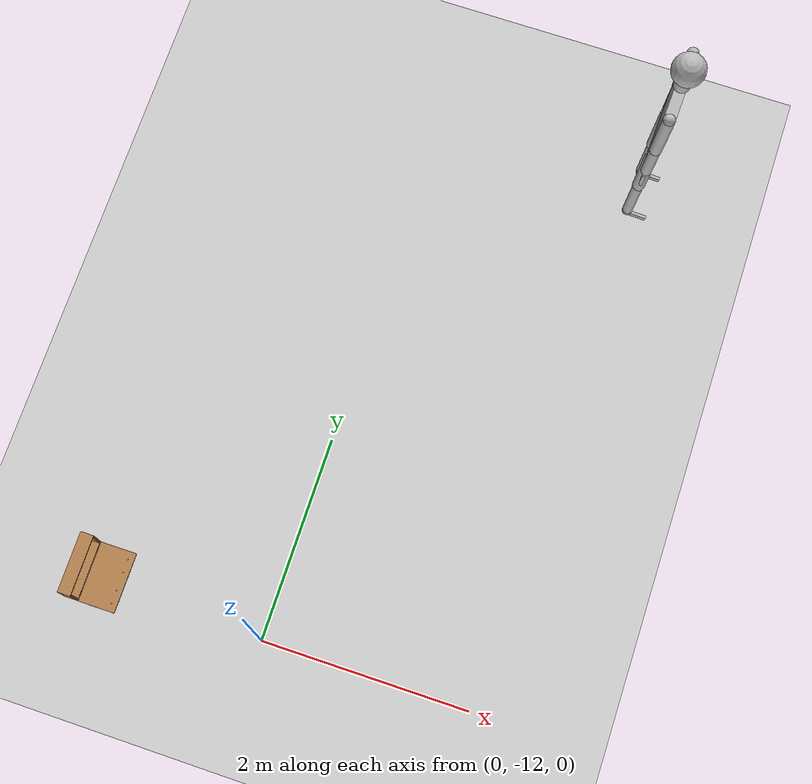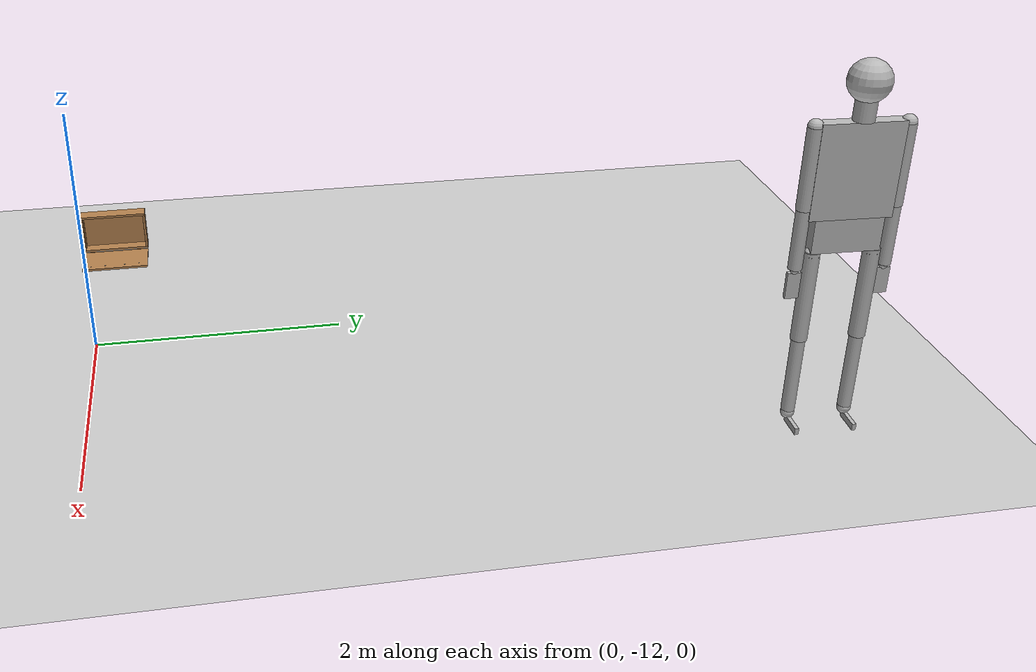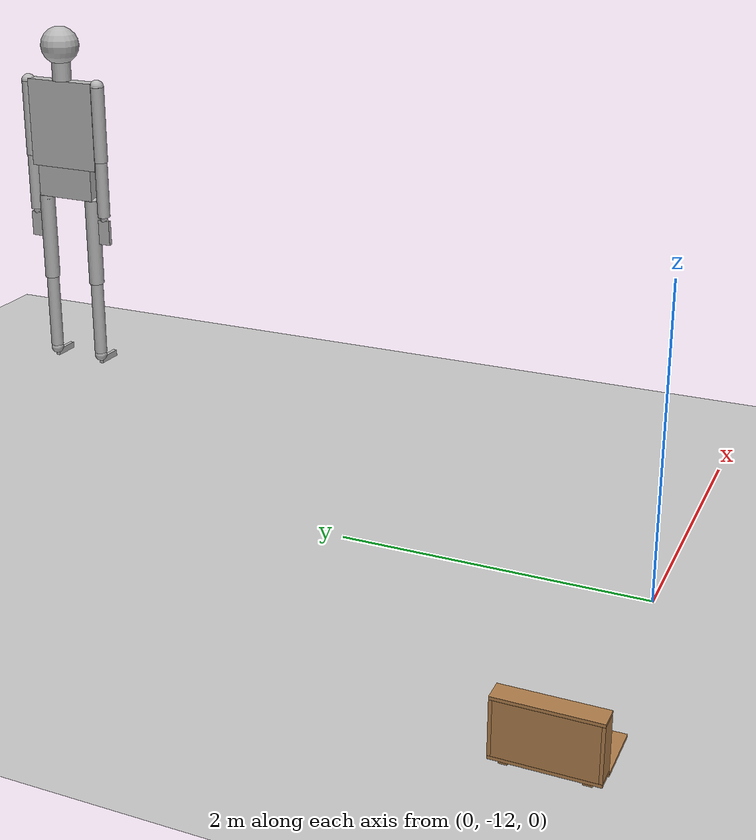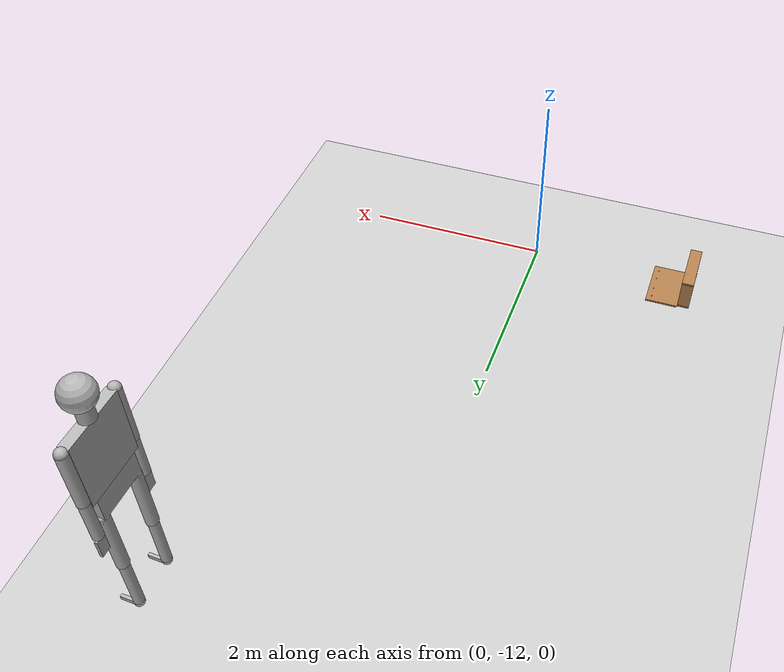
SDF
<sdf version="1.7">
 <world name="default">
  <model name="ground_plane">
   <static>1</static>
   <link name="link">
    <collision name="collision">
     <geometry><plane><normal>0 0 1</normal><size>100 100</size></plane></geometry>
     <surface>
      <contact><collide_bitmask>65535</collide_bitmask></contact>
      <friction><ode><mu>100</mu><mu2>50</mu2></ode></friction>
     </surface>
    </collision>
    <visual name="visual">
     <cast_shadows>0</cast_shadows>
     <geometry><plane><normal>0 0 1</normal><size>100 100</size></plane></geometry>
     <material>
      <script><uri>file://media/materials/scripts/gazebo.material</uri><name>Gazebo/Grey</name></script>
     </material>
    </visual>
   </link>
  </model>
  <model name="wooden_case_0">
   <link name="base">
    <pose>0 0 0.024 0 -0 0</pose>
    <inertial>
     <pose>-0.022184 0 0.171592 0 -0 0</pose>
     <mass>3.96264</mass>
     <inertia>
      <ixx>0.213536</ixx>
      <ixy>0</ixy>
      <ixz>0.000779377</ixz>
      <iyy>0.0708943</iyy>
      <iyz>0</iyz>
      <izz>0.154604</izz>
     </inertia>
    </inertial>
    <collision name="collision_back">
     <pose>-0.053975 0 0.1778 0 -0 0</pose>
     <geometry><box><size>0.01905 0.5461 0.3175</size></box></geometry>
     <surface>
      <contact>
       <poissons_ratio>0.347</poissons_ratio>
       <elastic_modulus>8.8e+09</elastic_modulus>
       <ode><kp>100000</kp><kd>100</kd><max_vel>100</max_vel><min_depth>0.001</min_depth></ode>
      </contact>
      <friction>
       <torsional>
        <coefficient>1</coefficient>
        <use_patch_radius>0</use_patch_radius>
        <surface_radius>0.01</surface_radius>
       </torsional>
      </friction>
     </surface>
    </collision>
    <visual name="visual_back">
     <pose>-0.053975 0 0.1778 0 -0 0</pose>
     <geometry><box><size>0.01905 0.5461 0.3175</size></box></geometry>
     <material>
      <script><uri>file://media/materials/scripts/gazebo.material</uri><name>Gazebo/Wood</name></script>
     </material>
    </visual>
    <collision name="collision_bottom">
     <pose>0 0 0.009525 0 -0 0</pose>
     <geometry><box><size>0.127 0.5842 0.01905</size></box></geometry>
     <surface>
      <contact>
       <poissons_ratio>0.347</poissons_ratio>
       <elastic_modulus>8.8e+09</elastic_modulus>
       <ode><kp>100000</kp><kd>100</kd><max_vel>100</max_vel><min_depth>0.001</min_depth></ode>
      </contact>
      <friction>
       <torsional>
        <coefficient>1</coefficient>
        <use_patch_radius>0</use_patch_radius>
        <surface_radius>0.01</surface_radius>
       </torsional>
      </friction>
     </surface>
    </collision>
    <visual name="visual_bottom">
     <pose>0 0 0.009525 0 -0 0</pose>
     <geometry><box><size>0.127 0.5842 0.01905</size></box></geometry>
     <material>
      <script><uri>file://media/materials/scripts/gazebo.material</uri><name>Gazebo/Wood</name></script>
     </material>
    </visual>
    <collision name="collision_top">
     <pose>0 0 0.346075 0 -0 0</pose>
     <geometry><box><size>0.127 0.5842 0.01905</size></box></geometry>
     <surface>
      <contact>
       <poissons_ratio>0.347</poissons_ratio>
       <elastic_modulus>8.8e+09</elastic_modulus>
       <ode><kp>100000</kp><kd>100</kd><max_vel>100</max_vel><min_depth>0.001</min_depth></ode>
      </contact>
      <friction>
       <torsional>
        <coefficient>1</coefficient>
        <use_patch_radius>0</use_patch_radius>
        <surface_radius>0.01</surface_radius>
       </torsional>
      </friction>
     </surface>
    </collision>
    <visual name="visual_top">
     <pose>0 0 0.346075 0 -0 0</pose>
     <geometry><box><size>0.127 0.5842 0.01905</size></box></geometry>
     <material>
      <script><uri>file://media/materials/scripts/gazebo.material</uri><name>Gazebo/Wood</name></script>
     </material>
    </visual>
    <collision name="collision_left">
     <pose>0 -0.282575 0.1778 0 -0 0</pose>
     <geometry><box><size>0.127 0.01905 0.3175</size></box></geometry>
     <surface>
      <contact>
       <poissons_ratio>0.347</poissons_ratio>
       <elastic_modulus>8.8e+09</elastic_modulus>
       <ode><kp>100000</kp><kd>100</kd><max_vel>100</max_vel><min_depth>0.001</min_depth></ode>
      </contact>
      <friction>
       <torsional>
        <coefficient>1</coefficient>
        <use_patch_radius>0</use_patch_radius>
        <surface_radius>0.01</surface_radius>
       </torsional>
      </friction>
     </surface>
    </collision>
    <visual name="visual_left">
     <pose>0 -0.282575 0.1778 0 -0 0</pose>
     <geometry><box><size>0.127 0.01905 0.3175</size></box></geometry>
     <material>
      <script><uri>file://media/materials/scripts/gazebo.material</uri><name>Gazebo/Wood</name></script>
     </material>
    </visual>
    <collision name="collision_right">
     <pose>0 0.282575 0.1778 0 -0 0</pose>
     <geometry><box><size>0.127 0.01905 0.3175</size></box></geometry>
     <surface>
      <contact>
       <poissons_ratio>0.347</poissons_ratio>
       <elastic_modulus>8.8e+09</elastic_modulus>
       <ode><kp>100000</kp><kd>100</kd><max_vel>100</max_vel><min_depth>0.001</min_depth></ode>
      </contact>
      <friction>
       <torsional>
        <coefficient>1</coefficient>
        <use_patch_radius>0</use_patch_radius>
        <surface_radius>0.01</surface_radius>
       </torsional>
      </friction>
     </surface>
    </collision>
    <visual name="visual_right">
     <pose>0 0.282575 0.1778 0 -0 0</pose>
     <geometry><box><size>0.127 0.01905 0.3175</size></box></geometry>
     <material>
      <script><uri>file://media/materials/scripts/gazebo.material</uri><name>Gazebo/Wood</name></script>
     </material>
    </visual>
    <collision name="collision_block_left">
     <pose>0.0095 -0.2151 -0.012 0 -0 0</pose>
     <geometry><box><size>0.108 0.05 0.024</size></box></geometry>
     <surface>
      <contact>
       <poissons_ratio>0.347</poissons_ratio>
       <elastic_modulus>8.8e+09</elastic_modulus>
       <ode><kp>100000</kp><kd>100</kd><max_vel>100</max_vel><min_depth>0.001</min_depth></ode>
      </contact>
      <friction>
       <torsional>
        <coefficient>1</coefficient>
        <use_patch_radius>0</use_patch_radius>
        <surface_radius>0.01</surface_radius>
       </torsional>
      </friction>
     </surface>
    </collision>
    <visual name="visual_block_left">
     <pose>0.0095 -0.2151 -0.012 0 -0 0</pose>
     <geometry><box><size>0.108 0.05 0.024</size></box></geometry>
     <material>
      <script><uri>file://media/materials/scripts/gazebo.material</uri><name>Gazebo/Wood</name></script>
     </material>
    </visual>
    <collision name="collision_block_right">
     <pose>0.0095 0.2151 -0.012 0 -0 0</pose>
     <geometry><box><size>0.108 0.05 0.024</size></box></geometry>
     <surface>
      <contact>
       <poissons_ratio>0.347</poissons_ratio>
       <elastic_modulus>8.8e+09</elastic_modulus>
       <ode><kp>100000</kp><kd>100</kd><max_vel>100</max_vel><min_depth>0.001</min_depth></ode>
      </contact>
      <friction>
       <torsional>
        <coefficient>1</coefficient>
        <use_patch_radius>0</use_patch_radius>
        <surface_radius>0.01</surface_radius>
       </torsional>
      </friction>
     </surface>
    </collision>
    <visual name="visual_block_right">
     <pose>0.0095 0.2151 -0.012 0 -0 0</pose>
     <geometry><box><size>0.108 0.05 0.024</size></box></geometry>
     <material>
      <script><uri>file://media/materials/scripts/gazebo.material</uri><name>Gazebo/Wood</name></script>
     </material>
    </visual>
   </link>
   <link name="lid">
    <pose>0.243775 0 0.009525 0 -0 0</pose>
    <inertial>
     <mass>1.97874</mass>
     <inertia>
      <ixx>0.0563367</ixx>
      <ixy>0</ixy>
      <ixz>0</ixz>
      <iyy>0.020911</iyy>
      <iyz>0</iyz>
      <izz>0.0771281</izz>
     </inertia>
    </inertial>
    <collision name="collision">
     <geometry><box><size>0.3556 0.5842 0.01905</size></box></geometry>
     <surface>
      <contact>
       <poissons_ratio>0.347</poissons_ratio>
       <elastic_modulus>8.8e+09</elastic_modulus>
       <ode><kp>100000</kp><kd>100</kd><max_vel>100</max_vel><min_depth>0.001</min_depth></ode>
      </contact>
      <friction>
       <torsional>
        <coefficient>1</coefficient>
        <use_patch_radius>0</use_patch_radius>
        <surface_radius>0.01</surface_radius>
       </torsional>
      </friction>
     </surface>
    </collision>
    <visual name="visual">
     <geometry><box><size>0.3556 0.5842 0.01905</size></box></geometry>
     <material>
      <script><uri>file://media/materials/scripts/gazebo.material</uri><name>Gazebo/Wood</name></script>
     </material>
    </visual>
    <visual name="tee_nut_1">
     <pose>0.122 -0.216 0 0 -0 0</pose>
     <geometry><cylinder><radius>0.00635</radius><length>0.0192405</length></cylinder></geometry>
     <material>
      <script><uri>file://media/materials/scripts/gazebo.material</uri><name>Gazebo/Grey</name></script>
     </material>
    </visual>
    <visual name="tee_nut_2">
     <pose>0.122 -0.088 0 0 -0 0</pose>
     <geometry><cylinder><radius>0.00635</radius><length>0.0192405</length></cylinder></geometry>
     <material>
      <script><uri>file://media/materials/scripts/gazebo.material</uri><name>Gazebo/Grey</name></script>
     </material>
    </visual>
    <visual name="tee_nut_3">
     <pose>0.122 0.088 0 0 -0 0</pose>
     <geometry><cylinder><radius>0.00635</radius><length>0.0192405</length></cylinder></geometry>
     <material>
      <script><uri>file://media/materials/scripts/gazebo.material</uri><name>Gazebo/Grey</name></script>
     </material>
    </visual>
    <visual name="tee_nut_4">
     <pose>0.122 0.216 0 0 -0 0</pose>
     <geometry><cylinder><radius>0.00635</radius><length>0.0192405</length></cylinder></geometry>
     <material>
      <script><uri>file://media/materials/scripts/gazebo.material</uri><name>Gazebo/Grey</name></script>
     </material>
    </visual>
   </link>
   <joint name="lid_hinge" type="revolute">
    <pose>-0.1778 0 0.01905 0 -0 0</pose>
    <parent>base</parent>
    <child>lid</child>
    <axis>
     <xyz>0 1 0</xyz>
     <limit><upper>0.523599</upper><lower>-1.5708</lower></limit>
     <dynamics><spring_reference>0</spring_reference><spring_stiffness>0</spring_stiffness></dynamics>
    </axis>
   </joint>
   <pose>-1.79945 -11.9059 -0.001057 0 -0.000428 0</pose>
  </model>
  <model name="ragdoll_0">
   <pose>2.02419 -6.65739 1.39996 1e-05 0.000293 -0.035808</pose>
   <link name="hip">
    <inertial>
     <inertia><ixx>0.1</ixx><ixy>0</ixy><ixz>0</ixz><iyy>0.1</iyy><iyz>0</iyz><izz>0.1</izz></inertia>
     <mass>10</mass>
    </inertial>
    <collision name="hip_geom">
     <pose>0 0 0.125 0 -0 0</pose>
     <geometry><box><size>0.1 0.5 0.25</size></box></geometry>
     <surface>
      <friction><ode><mu>-1</mu><mu2>-1</mu2><fdir1>0 0 0</fdir1><slip1>0</slip1><slip2>0</slip2></ode></friction>
      <bounce><restitution_coefficient>0</restitution_coefficient><threshold>100000</threshold></bounce>
      <contact>
       <ode>
        <soft_cfm>0</soft_cfm>
        <soft_erp>0.2</soft_erp>
        <kp>1e+12</kp>
        <kd>1</kd>
        <max_vel>0</max_vel>
        <min_depth>0.001</min_depth>
       </ode>
      </contact>
     </surface>
    </collision>
    <visual name="hip_geom_visual">
     <pose>0 0 0.125 0 -0 0</pose>
     <geometry><box><size>0.1 0.5 0.25</size></box></geometry>
    </visual>
    <gravity>0</gravity>
   </link>
   <link name="l_thigh_pan">
    <pose>0 0.22 0 0 -0 0</pose>
    <inertial>
     <inertia><ixx>0.01</ixx><ixy>0</ixy><ixz>0</ixz><iyy>0.01</iyy><iyz>0</iyz><izz>0.01</izz></inertia>
     <mass>1</mass>
    </inertial>
    <collision name="l_thigh_pan_geom">
     <pose>0 0 -0.03 0 -0 0</pose>
     <geometry><sphere><radius>0.06</radius></sphere></geometry>
     <surface>
      <friction><ode><mu>-1</mu><mu2>-1</mu2><fdir1>0 0 0</fdir1><slip1>0</slip1><slip2>0</slip2></ode></friction>
      <bounce><restitution_coefficient>0</restitution_coefficient><threshold>100000</threshold></bounce>
      <contact>
       <ode>
        <soft_cfm>0</soft_cfm>
        <soft_erp>0.2</soft_erp>
        <kp>1e+12</kp>
        <kd>1</kd>
        <max_vel>0</max_vel>
        <min_depth>0.001</min_depth>
       </ode>
      </contact>
     </surface>
    </collision>
    <visual name="l_thigh_pan_geom_visual">
     <pose>0 0 -0.03 0 -0 0</pose>
     <geometry><sphere><radius>0.06</radius></sphere></geometry>
    </visual>
    <gravity>0</gravity>
   </link>
   <link name="l_thigh_lift">
    <pose>0 0.22 0 0 -0 0</pose>
    <inertial>
     <inertia><ixx>0.05</ixx><ixy>0</ixy><ixz>0</ixz><iyy>0.05</iyy><iyz>0</iyz><izz>0.05</izz></inertia>
     <mass>5</mass>
    </inertial>
    <collision name="l_thigh_lift_geom">
     <pose>0 0 -0.35 0 -0 0</pose>
     <geometry><cylinder><radius>0.06</radius><length>0.7</length></cylinder></geometry>
     <surface>
      <friction><ode><mu>-1</mu><mu2>-1</mu2><fdir1>0 0 0</fdir1><slip1>0</slip1><slip2>0</slip2></ode></friction>
      <bounce><restitution_coefficient>0</restitution_coefficient><threshold>100000</threshold></bounce>
      <contact>
       <ode>
        <soft_cfm>0</soft_cfm>
        <soft_erp>0.2</soft_erp>
        <kp>1e+12</kp>
        <kd>1</kd>
        <max_vel>0</max_vel>
        <min_depth>0.001</min_depth>
       </ode>
      </contact>
     </surface>
    </collision>
    <visual name="l_thigh_lift_geom_visual">
     <pose>0 0 -0.35 0 -0 0</pose>
     <geometry><cylinder><radius>0.06</radius><length>0.7</length></cylinder></geometry>
    </visual>
    <gravity>0</gravity>
   </link>
   <link name="l_calf">
    <pose>0 0.22 -0.7 0 -0 0</pose>
    <inertial>
     <inertia><ixx>0.02</ixx><ixy>0</ixy><ixz>0</ixz><iyy>0.02</iyy><iyz>0</iyz><izz>0.02</izz></inertia>
     <mass>2</mass>
    </inertial>
    <collision name="l_calf_geom">
     <pose>0 0 -0.3 0 -0 0</pose>
     <geometry><cylinder><radius>0.05</radius><length>0.6</length></cylinder></geometry>
     <surface>
      <friction><ode><mu>-1</mu><mu2>-1</mu2><fdir1>0 0 0</fdir1><slip1>0</slip1><slip2>0</slip2></ode></friction>
      <bounce><restitution_coefficient>0</restitution_coefficient><threshold>100000</threshold></bounce>
      <contact>
       <ode>
        <soft_cfm>0</soft_cfm>
        <soft_erp>0.2</soft_erp>
        <kp>1e+12</kp>
        <kd>1</kd>
        <max_vel>0</max_vel>
        <min_depth>0.001</min_depth>
       </ode>
      </contact>
     </surface>
    </collision>
    <visual name="l_calf_geom_visual">
     <pose>0 0 -0.3 0 -0 0</pose>
     <geometry><cylinder><radius>0.05</radius><length>0.6</length></cylinder></geometry>
    </visual>
    <gravity>0</gravity>
   </link>
   <link name="l_ankle">
    <pose>0 0.22 -1.325 0 -0 0</pose>
    <inertial>
     <inertia><ixx>0.01</ixx><ixy>0</ixy><ixz>0</ixz><iyy>0.01</iyy><iyz>0</iyz><izz>0.01</izz></inertia>
     <mass>1</mass>
    </inertial>
    <collision name="l_ankle_geom">
     <geometry><sphere><radius>0.05</radius></sphere></geometry>
     <surface>
      <friction><ode><mu>-1</mu><mu2>-1</mu2><fdir1>0 0 0</fdir1><slip1>0</slip1><slip2>0</slip2></ode></friction>
      <bounce><restitution_coefficient>0</restitution_coefficient><threshold>100000</threshold></bounce>
      <contact>
       <ode>
        <soft_cfm>0</soft_cfm>
        <soft_erp>0.2</soft_erp>
        <kp>1e+12</kp>
        <kd>1</kd>
        <max_vel>0</max_vel>
        <min_depth>0.001</min_depth>
       </ode>
      </contact>
     </surface>
    </collision>
    <visual name="l_ankle_geom_visual"><geometry><sphere><radius>0.05</radius></sphere></geometry></visual>
    <gravity>0</gravity>
   </link>
   <link name="l_foot">
    <pose>0 0.22 -1.35 0 -0 0</pose>
    <inertial>
     <pose>0.1 0 0 0 -0 0</pose>
     <inertia><ixx>0.01</ixx><ixy>0</ixy><ixz>0</ixz><iyy>0.01</iyy><iyz>0</iyz><izz>0.01</izz></inertia>
     <mass>1</mass>
    </inertial>
    <collision name="l_foot_geom">
     <pose>0.1 0 -0.025 0 -0 0</pose>
     <geometry><box><size>0.2 0.03 0.05</size></box></geometry>
     <surface>
      <friction><ode><mu>-1</mu><mu2>-1</mu2><fdir1>0 0 0</fdir1><slip1>0</slip1><slip2>0</slip2></ode></friction>
      <bounce><restitution_coefficient>0</restitution_coefficient><threshold>100000</threshold></bounce>
      <contact>
       <ode>
        <soft_cfm>0</soft_cfm>
        <soft_erp>0.2</soft_erp>
        <kp>1e+12</kp>
        <kd>1</kd>
        <max_vel>0</max_vel>
        <min_depth>0.001</min_depth>
       </ode>
      </contact>
     </surface>
    </collision>
    <visual name="l_foot_geom_visual">
     <pose>0.1 0 -0.025 0 -0 0</pose>
     <geometry><box><size>0.2 0.03 0.05</size></box></geometry>
    </visual>
   </link>
   <link name="r_thigh_pan">
    <pose>0 -0.22 0 0 -0 0</pose>
    <inertial>
     <inertia><ixx>0.01</ixx><ixy>0</ixy><ixz>0</ixz><iyy>0.01</iyy><iyz>0</iyz><izz>0.01</izz></inertia>
     <mass>1</mass>
    </inertial>
    <collision name="r_thigh_pan_geom">
     <pose>0 0 -0.03 0 -0 0</pose>
     <geometry><sphere><radius>0.06</radius></sphere></geometry>
     <surface>
      <friction><ode><mu>-1</mu><mu2>-1</mu2><fdir1>0 0 0</fdir1><slip1>0</slip1><slip2>0</slip2></ode></friction>
      <bounce><restitution_coefficient>0</restitution_coefficient><threshold>100000</threshold></bounce>
      <contact>
       <ode>
        <soft_cfm>0</soft_cfm>
        <soft_erp>0.2</soft_erp>
        <kp>1e+12</kp>
        <kd>1</kd>
        <max_vel>0</max_vel>
        <min_depth>0.001</min_depth>
       </ode>
      </contact>
     </surface>
    </collision>
    <visual name="r_thigh_pan_geom_visual">
     <pose>0 0 -0.03 0 -0 0</pose>
     <geometry><sphere><radius>0.06</radius></sphere></geometry>
    </visual>
    <gravity>0</gravity>
   </link>
   <link name="r_thigh_lift">
    <pose>0 -0.22 0 0 -0 0</pose>
    <inertial>
     <inertia><ixx>0.05</ixx><ixy>0</ixy><ixz>0</ixz><iyy>0.05</iyy><iyz>0</iyz><izz>0.05</izz></inertia>
     <mass>5</mass>
    </inertial>
    <collision name="r_thigh_lift_geom">
     <pose>0 0 -0.35 0 -0 0</pose>
     <geometry><cylinder><radius>0.06</radius><length>0.7</length></cylinder></geometry>
     <surface>
      <friction><ode><mu>-1</mu><mu2>-1</mu2><fdir1>0 0 0</fdir1><slip1>0</slip1><slip2>0</slip2></ode></friction>
      <bounce><restitution_coefficient>0</restitution_coefficient><threshold>100000</threshold></bounce>
      <contact>
       <ode>
        <soft_cfm>0</soft_cfm>
        <soft_erp>0.2</soft_erp>
        <kp>1e+12</kp>
        <kd>1</kd>
        <max_vel>0</max_vel>
        <min_depth>0.001</min_depth>
       </ode>
      </contact>
     </surface>
    </collision>
    <visual name="r_thigh_lift_geom_visual">
     <pose>0 0 -0.35 0 -0 0</pose>
     <geometry><cylinder><radius>0.06</radius><length>0.7</length></cylinder></geometry>
    </visual>
    <gravity>0</gravity>
   </link>
   <link name="r_calf">
    <pose>0 -0.22 -0.7 0 -0 0</pose>
    <inertial>
     <inertia><ixx>0.02</ixx><ixy>0</ixy><ixz>0</ixz><iyy>0.02</iyy><iyz>0</iyz><izz>0.02</izz></inertia>
     <mass>2</mass>
    </inertial>
    <collision name="r_calf_geom">
     <pose>0 0 -0.3 0 -0 0</pose>
     <geometry><cylinder><radius>0.05</radius><length>0.6</length></cylinder></geometry>
     <surface>
      <friction><ode><mu>-1</mu><mu2>-1</mu2><fdir1>0 0 0</fdir1><slip1>0</slip1><slip2>0</slip2></ode></friction>
      <bounce><restitution_coefficient>0</restitution_coefficient><threshold>100000</threshold></bounce>
      <contact>
       <ode>
        <soft_cfm>0</soft_cfm>
        <soft_erp>0.2</soft_erp>
        <kp>1e+12</kp>
        <kd>1</kd>
        <max_vel>0</max_vel>
        <min_depth>0.001</min_depth>
       </ode>
      </contact>
     </surface>
    </collision>
    <visual name="r_calf_geom_visual">
     <pose>0 0 -0.3 0 -0 0</pose>
     <geometry><cylinder><radius>0.05</radius><length>0.6</length></cylinder></geometry>
    </visual>
    <gravity>0</gravity>
   </link>
   <link name="r_ankle">
    <pose>0 -0.22 -1.325 0 -0 0</pose>
    <inertial>
     <inertia><ixx>0.01</ixx><ixy>0</ixy><ixz>0</ixz><iyy>0.01</iyy><iyz>0</iyz><izz>0.01</izz></inertia>
     <mass>1</mass>
    </inertial>
    <collision name="r_ankle_geom">
     <geometry><sphere><radius>0.05</radius></sphere></geometry>
     <surface>
      <friction><ode><mu>-1</mu><mu2>-1</mu2><fdir1>0 0 0</fdir1><slip1>0</slip1><slip2>0</slip2></ode></friction>
      <bounce><restitution_coefficient>0</restitution_coefficient><threshold>100000</threshold></bounce>
      <contact>
       <ode>
        <soft_cfm>0</soft_cfm>
        <soft_erp>0.2</soft_erp>
        <kp>1e+12</kp>
        <kd>1</kd>
        <max_vel>0</max_vel>
        <min_depth>0.001</min_depth>
       </ode>
      </contact>
     </surface>
    </collision>
    <visual name="r_ankle_geom_visual"><geometry><sphere><radius>0.05</radius></sphere></geometry></visual>
    <gravity>0</gravity>
   </link>
   <link name="r_foot">
    <pose>0 -0.22 -1.35 0 -0 0</pose>
    <inertial>
     <pose>0.1 0 0 0 -0 0</pose>
     <inertia><ixx>0.01</ixx><ixy>0</ixy><ixz>0</ixz><iyy>0.01</iyy><iyz>0</iyz><izz>0.01</izz></inertia>
     <mass>1</mass>
    </inertial>
    <collision name="r_foot_geom">
     <pose>0.1 0 -0.025 0 -0 0</pose>
     <geometry><box><size>0.2 0.03 0.05</size></box></geometry>
     <surface>
      <friction><ode><mu>-1</mu><mu2>-1</mu2><fdir1>0 0 0</fdir1><slip1>0</slip1><slip2>0</slip2></ode></friction>
      <bounce><restitution_coefficient>0</restitution_coefficient><threshold>100000</threshold></bounce>
      <contact>
       <ode>
        <soft_cfm>0</soft_cfm>
        <soft_erp>0.2</soft_erp>
        <kp>1e+12</kp>
        <kd>1</kd>
        <max_vel>0</max_vel>
        <min_depth>0.001</min_depth>
       </ode>
      </contact>
     </surface>
    </collision>
    <visual name="r_foot_geom_visual">
     <pose>0.1 0 -0.025 0 -0 0</pose>
     <geometry><box><size>0.2 0.03 0.05</size></box></geometry>
    </visual>
   </link>
   <link name="torso">
    <pose>0 0 0.25 0 -0 0</pose>
    <inertial>
     <inertia><ixx>0.3</ixx><ixy>0</ixy><ixz>0</ixz><iyy>0.3</iyy><iyz>0</iyz><izz>0.3</izz></inertia>
     <mass>30</mass>
    </inertial>
    <collision name="torso_geom">
     <pose>0 0 0.35 0 -0 0</pose>
     <geometry><box><size>0.1 0.6 0.7</size></box></geometry>
     <surface>
      <friction><ode><mu>-1</mu><mu2>-1</mu2><fdir1>0 0 0</fdir1><slip1>0</slip1><slip2>0</slip2></ode></friction>
      <bounce><restitution_coefficient>0</restitution_coefficient><threshold>100000</threshold></bounce>
      <contact>
       <ode>
        <soft_cfm>0</soft_cfm>
        <soft_erp>0.2</soft_erp>
        <kp>1e+12</kp>
        <kd>1</kd>
        <max_vel>0</max_vel>
        <min_depth>0.001</min_depth>
       </ode>
      </contact>
     </surface>
    </collision>
    <visual name="torso_geom_visual">
     <pose>0 0 0.35 0 -0 0</pose>
     <geometry><box><size>0.1 0.6 0.7</size></box></geometry>
    </visual>
    <gravity>0</gravity>
   </link>
   <link name="l_shoulder">
    <pose>0 0.3275 0.9225 0 -0 0</pose>
    <inertial>
     <inertia><ixx>0.01</ixx><ixy>0</ixy><ixz>0</ixz><iyy>0.01</iyy><iyz>0</iyz><izz>0.01</izz></inertia>
     <mass>1</mass>
    </inertial>
    <collision name="l_shoulder_geom">
     <geometry><sphere><radius>0.055</radius></sphere></geometry>
     <surface>
      <friction><ode><mu>-1</mu><mu2>-1</mu2><fdir1>0 0 0</fdir1><slip1>0</slip1><slip2>0</slip2></ode></friction>
      <bounce><restitution_coefficient>0</restitution_coefficient><threshold>100000</threshold></bounce>
      <contact>
       <ode>
        <soft_cfm>0</soft_cfm>
        <soft_erp>0.2</soft_erp>
        <kp>1e+12</kp>
        <kd>1</kd>
        <max_vel>0</max_vel>
        <min_depth>0.001</min_depth>
       </ode>
      </contact>
     </surface>
    </collision>
    <visual name="l_shoulder_geom_visual"><geometry><sphere><radius>0.055</radius></sphere></geometry></visual>
    <gravity>0</gravity>
   </link>
   <link name="l_upper_arm">
    <pose>0 0.3275 0.9225 0 -0 0</pose>
    <inertial>
     <inertia><ixx>0.02</ixx><ixy>0</ixy><ixz>0</ixz><iyy>0.02</iyy><iyz>0</iyz><izz>0.02</izz></inertia>
     <mass>2</mass>
    </inertial>
    <collision name="l_upper_arm_geom">
     <pose>0 0 -0.3 0 -0 0</pose>
     <geometry><cylinder><radius>0.055</radius><length>0.6</length></cylinder></geometry>
     <surface>
      <friction><ode><mu>-1</mu><mu2>-1</mu2><fdir1>0 0 0</fdir1><slip1>0</slip1><slip2>0</slip2></ode></friction>
      <bounce><restitution_coefficient>0</restitution_coefficient><threshold>100000</threshold></bounce>
      <contact>
       <ode>
        <soft_cfm>0</soft_cfm>
        <soft_erp>0.2</soft_erp>
        <kp>1e+12</kp>
        <kd>1</kd>
        <max_vel>0</max_vel>
        <min_depth>0.001</min_depth>
       </ode>
      </contact>
     </surface>
    </collision>
    <visual name="l_upper_arm_geom_visual">
     <pose>0 0 -0.3 0 -0 0</pose>
     <geometry><cylinder><radius>0.055</radius><length>0.6</length></cylinder></geometry>
    </visual>
    <gravity>0</gravity>
   </link>
   <link name="l_forearm">
    <pose>0 0.3275 0.3225 0 -0 0</pose>
    <inertial>
     <inertia><ixx>0.01</ixx><ixy>0</ixy><ixz>0</ixz><iyy>0.01</iyy><iyz>0</iyz><izz>0.01</izz></inertia>
     <mass>1</mass>
    </inertial>
    <collision name="l_forearm_geom">
     <pose>0 0 -0.225 0 -0 0</pose>
     <geometry><cylinder><radius>0.05</radius><length>0.45</length></cylinder></geometry>
     <surface>
      <friction><ode><mu>-1</mu><mu2>-1</mu2><fdir1>0 0 0</fdir1><slip1>0</slip1><slip2>0</slip2></ode></friction>
      <bounce><restitution_coefficient>0</restitution_coefficient><threshold>100000</threshold></bounce>
      <contact>
       <ode>
        <soft_cfm>0</soft_cfm>
        <soft_erp>0.2</soft_erp>
        <kp>1e+12</kp>
        <kd>1</kd>
        <max_vel>0</max_vel>
        <min_depth>0.001</min_depth>
       </ode>
      </contact>
     </surface>
    </collision>
    <visual name="l_forearm_geom_visual">
     <pose>0 0 -0.225 0 -0 0</pose>
     <geometry><cylinder><radius>0.05</radius><length>0.45</length></cylinder></geometry>
    </visual>
    <gravity>0</gravity>
   </link>
   <link name="l_wrist">
    <pose>0 0.3275 -0.1425 0 -0 0</pose>
    <inertial>
     <inertia><ixx>0.01</ixx><ixy>0</ixy><ixz>0</ixz><iyy>0.01</iyy><iyz>0</iyz><izz>0.01</izz></inertia>
     <mass>1</mass>
    </inertial>
    <collision name="l_wrist_geom">
     <geometry><sphere><radius>0.03</radius></sphere></geometry>
     <surface>
      <friction><ode><mu>-1</mu><mu2>-1</mu2><fdir1>0 0 0</fdir1><slip1>0</slip1><slip2>0</slip2></ode></friction>
      <bounce><restitution_coefficient>0</restitution_coefficient><threshold>100000</threshold></bounce>
      <contact>
       <ode>
        <soft_cfm>0</soft_cfm>
        <soft_erp>0.2</soft_erp>
        <kp>1e+12</kp>
        <kd>1</kd>
        <max_vel>0</max_vel>
        <min_depth>0.001</min_depth>
       </ode>
      </contact>
     </surface>
    </collision>
    <visual name="l_wrist_geom_visual"><geometry><sphere><radius>0.03</radius></sphere></geometry></visual>
    <gravity>0</gravity>
   </link>
   <link name="l_hand">
    <pose>0 0.3275 -0.1575 0 -0 0</pose>
    <inertial>
     <inertia><ixx>0.01</ixx><ixy>0</ixy><ixz>0</ixz><iyy>0.01</iyy><iyz>0</iyz><izz>0.01</izz></inertia>
     <mass>1</mass>
    </inertial>
    <collision name="l_hand_geom">
     <pose>0 0 -0.1 0 -0 0</pose>
     <geometry><box><size>0.03 0.1 0.2</size></box></geometry>
     <surface>
      <friction><ode><mu>-1</mu><mu2>-1</mu2><fdir1>0 0 0</fdir1><slip1>0</slip1><slip2>0</slip2></ode></friction>
      <bounce><restitution_coefficient>0</restitution_coefficient><threshold>100000</threshold></bounce>
      <contact>
       <ode>
        <soft_cfm>0</soft_cfm>
        <soft_erp>0.2</soft_erp>
        <kp>1e+12</kp>
        <kd>1</kd>
        <max_vel>0</max_vel>
        <min_depth>0.001</min_depth>
       </ode>
      </contact>
     </surface>
    </collision>
    <visual name="l_hand_geom_visual">
     <pose>0 0 -0.1 0 -0 0</pose>
     <geometry><box><size>0.03 0.1 0.2</size></box></geometry>
    </visual>
    <gravity>0</gravity>
   </link>
   <link name="neck">
    <pose>0 0 0.95 0 -0 0</pose>
    <inertial>
     <inertia><ixx>0.01</ixx><ixy>0</ixy><ixz>0</ixz><iyy>0.01</iyy><iyz>0</iyz><izz>0.01</izz></inertia>
     <mass>1</mass>
    </inertial>
    <collision name="neck_geom">
     <pose>0 0 0.1 0 -0 0</pose>
     <geometry><cylinder><radius>0.075</radius><length>0.2</length></cylinder></geometry>
     <surface>
      <friction><ode><mu>-1</mu><mu2>-1</mu2><fdir1>0 0 0</fdir1><slip1>0</slip1><slip2>0</slip2></ode></friction>
      <bounce><restitution_coefficient>0</restitution_coefficient><threshold>100000</threshold></bounce>
      <contact>
       <ode>
        <soft_cfm>0</soft_cfm>
        <soft_erp>0.2</soft_erp>
        <kp>1e+12</kp>
        <kd>1</kd>
        <max_vel>0</max_vel>
        <min_depth>0.001</min_depth>
       </ode>
      </contact>
     </surface>
    </collision>
    <visual name="neck_geom_visual">
     <pose>0 0 0.1 0 -0 0</pose>
     <geometry><cylinder><radius>0.075</radius><length>0.2</length></cylinder></geometry>
    </visual>
    <gravity>0</gravity>
   </link>
   <link name="head">
    <pose>0 0 1.225 0 -0 0</pose>
    <inertial>
     <inertia><ixx>0.1</ixx><ixy>0</ixy><ixz>0</ixz><iyy>0.1</iyy><iyz>0</iyz><izz>0.1</izz></inertia>
     <mass>10</mass>
    </inertial>
    <collision name="head_geom">
     <geometry><sphere><radius>0.15</radius></sphere></geometry>
     <surface>
      <friction><ode><mu>-1</mu><mu2>-1</mu2><fdir1>0 0 0</fdir1><slip1>0</slip1><slip2>0</slip2></ode></friction>
      <bounce><restitution_coefficient>0</restitution_coefficient><threshold>100000</threshold></bounce>
      <contact>
       <ode>
        <soft_cfm>0</soft_cfm>
        <soft_erp>0.2</soft_erp>
        <kp>1e+12</kp>
        <kd>1</kd>
        <max_vel>0</max_vel>
        <min_depth>0.001</min_depth>
       </ode>
      </contact>
     </surface>
    </collision>
    <visual name="head_geom_visual"><geometry><sphere><radius>0.15</radius></sphere></geometry></visual>
    <gravity>0</gravity>
   </link>
   <link name="r_shoulder">
    <pose>0 -0.3275 0.9225 0 -0 0</pose>
    <inertial>
     <inertia><ixx>0.01</ixx><ixy>0</ixy><ixz>0</ixz><iyy>0.01</iyy><iyz>0</iyz><izz>0.01</izz></inertia>
     <mass>1</mass>
    </inertial>
    <collision name="r_shoulder_geom">
     <geometry><sphere><radius>0.055</radius></sphere></geometry>
     <surface>
      <friction><ode><mu>-1</mu><mu2>-1</mu2><fdir1>0 0 0</fdir1><slip1>0</slip1><slip2>0</slip2></ode></friction>
      <bounce><restitution_coefficient>0</restitution_coefficient><threshold>100000</threshold></bounce>
      <contact>
       <ode>
        <soft_cfm>0</soft_cfm>
        <soft_erp>0.2</soft_erp>
        <kp>1e+12</kp>
        <kd>1</kd>
        <max_vel>0</max_vel>
        <min_depth>0.001</min_depth>
       </ode>
      </contact>
     </surface>
    </collision>
    <visual name="r_shoulder_geom_visual"><geometry><sphere><radius>0.055</radius></sphere></geometry></visual>
    <gravity>0</gravity>
   </link>
   <link name="r_upper_arm">
    <pose>0 -0.3275 0.9225 0 -0 0</pose>
    <inertial>
     <inertia><ixx>0.02</ixx><ixy>0</ixy><ixz>0</ixz><iyy>0.02</iyy><iyz>0</iyz><izz>0.02</izz></inertia>
     <mass>2</mass>
    </inertial>
    <collision name="r_upper_arm_geom">
     <pose>0 0 -0.3 0 -0 0</pose>
     <geometry><cylinder><radius>0.055</radius><length>0.6</length></cylinder></geometry>
     <surface>
      <friction><ode><mu>-1</mu><mu2>-1</mu2><fdir1>0 0 0</fdir1><slip1>0</slip1><slip2>0</slip2></ode></friction>
      <bounce><restitution_coefficient>0</restitution_coefficient><threshold>100000</threshold></bounce>
      <contact>
       <ode>
        <soft_cfm>0</soft_cfm>
        <soft_erp>0.2</soft_erp>
        <kp>1e+12</kp>
        <kd>1</kd>
        <max_vel>0</max_vel>
        <min_depth>0.001</min_depth>
       </ode>
      </contact>
     </surface>
    </collision>
    <visual name="r_upper_arm_geom_visual">
     <pose>0 0 -0.3 0 -0 0</pose>
     <geometry><cylinder><radius>0.055</radius><length>0.6</length></cylinder></geometry>
    </visual>
    <gravity>0</gravity>
   </link>
   <link name="r_forearm">
    <pose>0 -0.3275 0.3225 0 -0 0</pose>
    <inertial>
     <inertia><ixx>0.01</ixx><ixy>0</ixy><ixz>0</ixz><iyy>0.01</iyy><iyz>0</iyz><izz>0.01</izz></inertia>
     <mass>1</mass>
    </inertial>
    <collision name="r_forearm_geom">
     <pose>0 0 -0.225 0 -0 0</pose>
     <geometry><cylinder><radius>0.05</radius><length>0.45</length></cylinder></geometry>
     <surface>
      <friction><ode><mu>-1</mu><mu2>-1</mu2><fdir1>0 0 0</fdir1><slip1>0</slip1><slip2>0</slip2></ode></friction>
      <bounce><restitution_coefficient>0</restitution_coefficient><threshold>100000</threshold></bounce>
      <contact>
       <ode>
        <soft_cfm>0</soft_cfm>
        <soft_erp>0.2</soft_erp>
        <kp>1e+12</kp>
        <kd>1</kd>
        <max_vel>0</max_vel>
        <min_depth>0.001</min_depth>
       </ode>
      </contact>
     </surface>
    </collision>
    <visual name="r_forearm_geom_visual">
     <pose>0 0 -0.225 0 -0 0</pose>
     <geometry><cylinder><radius>0.05</radius><length>0.45</length></cylinder></geometry>
    </visual>
    <gravity>0</gravity>
   </link>
   <link name="r_wrist">
    <pose>0 -0.3275 -0.1425 0 -0 0</pose>
    <inertial>
     <inertia><ixx>0.01</ixx><ixy>0</ixy><ixz>0</ixz><iyy>0.01</iyy><iyz>0</iyz><izz>0.01</izz></inertia>
     <mass>1</mass>
    </inertial>
    <collision name="r_wrist_geom">
     <geometry><sphere><radius>0.03</radius></sphere></geometry>
     <surface>
      <friction><ode><mu>-1</mu><mu2>-1</mu2><fdir1>0 0 0</fdir1><slip1>0</slip1><slip2>0</slip2></ode></friction>
      <bounce><restitution_coefficient>0</restitution_coefficient><threshold>100000</threshold></bounce>
      <contact>
       <ode>
        <soft_cfm>0</soft_cfm>
        <soft_erp>0.2</soft_erp>
        <kp>1e+12</kp>
        <kd>1</kd>
        <max_vel>0</max_vel>
        <min_depth>0.001</min_depth>
       </ode>
      </contact>
     </surface>
    </collision>
    <visual name="r_wrist_geom_visual"><geometry><sphere><radius>0.03</radius></sphere></geometry></visual>
    <gravity>0</gravity>
   </link>
   <link name="r_hand">
    <pose>0 -0.3275 -0.1575 0 -0 0</pose>
    <inertial>
     <inertia><ixx>0.01</ixx><ixy>0</ixy><ixz>0</ixz><iyy>0.01</iyy><iyz>0</iyz><izz>0.01</izz></inertia>
     <mass>1</mass>
    </inertial>
    <collision name="r_hand_geom">
     <pose>0 0 -0.1 0 -0 0</pose>
     <geometry><box><size>0.03 0.1 0.2</size></box></geometry>
     <surface>
      <friction><ode><mu>-1</mu><mu2>-1</mu2><fdir1>0 0 0</fdir1><slip1>0</slip1><slip2>0</slip2></ode></friction>
      <bounce><restitution_coefficient>0</restitution_coefficient><threshold>100000</threshold></bounce>
      <contact>
       <ode>
        <soft_cfm>0</soft_cfm>
        <soft_erp>0.2</soft_erp>
        <kp>1e+12</kp>
        <kd>1</kd>
        <max_vel>0</max_vel>
        <min_depth>0.001</min_depth>
       </ode>
      </contact>
     </surface>
    </collision>
    <visual name="r_hand_geom_visual">
     <pose>0 0 -0.1 0 -0 0</pose>
     <geometry><box><size>0.03 0.1 0.2</size></box></geometry>
    </visual>
    <gravity>0</gravity>
   </link>
   <joint name="l_thigh_pan_joint" type="revolute">
    <parent>hip</parent>
    <child>l_thigh_pan</child>
    <axis>
     <dynamics>
      <damping>0</damping>
      <friction>0</friction>
      <spring_reference>0</spring_reference>
      <spring_stiffness>0</spring_stiffness>
     </dynamics>
     <limit><lower>-1.5708</lower><upper>1.5708</upper><effort>0</effort><velocity>0</velocity></limit>
     <xyz expressed_in="__model__">0 0 1</xyz>
    </axis>
   </joint>
   <joint name="l_thigh_lift_joint" type="revolute">
    <parent>l_thigh_pan</parent>
    <child>l_thigh_lift</child>
    <axis>
     <dynamics>
      <damping>0</damping>
      <friction>0</friction>
      <spring_reference>0</spring_reference>
      <spring_stiffness>0</spring_stiffness>
     </dynamics>
     <limit><lower>-1.5708</lower><upper>1.5708</upper><effort>0</effort><velocity>0</velocity></limit>
     <xyz expressed_in="__model__">0 1 0</xyz>
    </axis>
   </joint>
   <joint name="l_calf_joint" type="revolute">
    <parent>l_thigh_lift</parent>
    <child>l_calf</child>
    <axis>
     <dynamics>
      <damping>0</damping>
      <friction>0</friction>
      <spring_reference>0</spring_reference>
      <spring_stiffness>0</spring_stiffness>
     </dynamics>
     <limit><lower>-1.5708</lower><upper>1.5708</upper><effort>0</effort><velocity>0</velocity></limit>
     <xyz expressed_in="__model__">0 1 0</xyz>
    </axis>
   </joint>
   <joint name="l_ankle_joint" type="revolute">
    <parent>l_calf</parent>
    <child>l_ankle</child>
    <axis>
     <dynamics>
      <damping>0</damping>
      <friction>0</friction>
      <spring_reference>0</spring_reference>
      <spring_stiffness>0</spring_stiffness>
     </dynamics>
     <limit><lower>-1.5708</lower><upper>1.5708</upper><effort>0</effort><velocity>0</velocity></limit>
     <xyz expressed_in="__model__">0 1 0</xyz>
    </axis>
   </joint>
   <joint name="l_foot_joint" type="revolute">
    <parent>l_ankle</parent>
    <child>l_foot</child>
    <axis>
     <dynamics>
      <damping>0</damping>
      <friction>0</friction>
      <spring_reference>0</spring_reference>
      <spring_stiffness>0</spring_stiffness>
     </dynamics>
     <limit><lower>-1.5708</lower><upper>1.5708</upper><effort>0</effort><velocity>0</velocity></limit>
     <xyz expressed_in="__model__">1 0 0</xyz>
    </axis>
   </joint>
   <joint name="r_thigh_pan_joint" type="revolute">
    <parent>hip</parent>
    <child>r_thigh_pan</child>
    <axis>
     <dynamics>
      <damping>0</damping>
      <friction>0</friction>
      <spring_reference>0</spring_reference>
      <spring_stiffness>0</spring_stiffness>
     </dynamics>
     <limit><lower>-1.5708</lower><upper>1.5708</upper><effort>0</effort><velocity>0</velocity></limit>
     <xyz expressed_in="__model__">0 0 1</xyz>
    </axis>
   </joint>
   <joint name="r_thigh_lift_joint" type="revolute">
    <parent>r_thigh_pan</parent>
    <child>r_thigh_lift</child>
    <axis>
     <dynamics>
      <damping>0</damping>
      <friction>0</friction>
      <spring_reference>0</spring_reference>
      <spring_stiffness>0</spring_stiffness>
     </dynamics>
     <limit><lower>-1.5708</lower><upper>1.5708</upper><effort>0</effort><velocity>0</velocity></limit>
     <xyz expressed_in="__model__">0 1 0</xyz>
    </axis>
   </joint>
   <joint name="r_calf_joint" type="revolute">
    <parent>r_thigh_lift</parent>
    <child>r_calf</child>
    <axis>
     <dynamics>
      <damping>0</damping>
      <friction>0</friction>
      <spring_reference>0</spring_reference>
      <spring_stiffness>0</spring_stiffness>
     </dynamics>
     <limit><lower>-1.5708</lower><upper>1.5708</upper><effort>0</effort><velocity>0</velocity></limit>
     <xyz expressed_in="__model__">0 1 0</xyz>
    </axis>
   </joint>
   <joint name="r_ankle_joint" type="revolute">
    <parent>r_calf</parent>
    <child>r_ankle</child>
    <axis>
     <dynamics>
      <damping>0</damping>
      <friction>0</friction>
      <spring_reference>0</spring_reference>
      <spring_stiffness>0</spring_stiffness>
     </dynamics>
     <limit><lower>-1.5708</lower><upper>1.5708</upper><effort>0</effort><velocity>0</velocity></limit>
     <xyz expressed_in="__model__">0 1 0</xyz>
    </axis>
   </joint>
   <joint name="r_foot_joint" type="revolute">
    <parent>r_ankle</parent>
    <child>r_foot</child>
    <axis>
     <dynamics>
      <damping>0</damping>
      <friction>0</friction>
      <spring_reference>0</spring_reference>
      <spring_stiffness>0</spring_stiffness>
     </dynamics>
     <limit><lower>-1.5708</lower><upper>1.5708</upper><effort>0</effort><velocity>0</velocity></limit>
     <xyz expressed_in="__model__">1 0 0</xyz>
    </axis>
   </joint>
   <joint name="torso_joint" type="revolute">
    <parent>hip</parent>
    <child>torso</child>
    <axis>
     <dynamics>
      <damping>0</damping>
      <friction>0</friction>
      <spring_reference>0</spring_reference>
      <spring_stiffness>0</spring_stiffness>
     </dynamics>
     <limit><lower>-1.5708</lower><upper>1.5708</upper><effort>0</effort><velocity>0</velocity></limit>
     <xyz expressed_in="__model__">0 1 0</xyz>
    </axis>
   </joint>
   <joint name="l_shoulder_joint" type="revolute">
    <parent>torso</parent>
    <child>l_shoulder</child>
    <axis>
     <dynamics>
      <damping>0</damping>
      <friction>0</friction>
      <spring_reference>0</spring_reference>
      <spring_stiffness>0</spring_stiffness>
     </dynamics>
     <limit><lower>-1.5708</lower><upper>1.5708</upper><effort>0</effort><velocity>0</velocity></limit>
     <xyz expressed_in="__model__">1 0 0</xyz>
    </axis>
   </joint>
   <joint name="l_upper_arm_joint" type="revolute">
    <parent>l_shoulder</parent>
    <child>l_upper_arm</child>
    <axis>
     <dynamics>
      <damping>0</damping>
      <friction>0</friction>
      <spring_reference>0</spring_reference>
      <spring_stiffness>0</spring_stiffness>
     </dynamics>
     <limit><lower>-1.5708</lower><upper>1.5708</upper><effort>0</effort><velocity>0</velocity></limit>
     <xyz expressed_in="__model__">0 1 0</xyz>
    </axis>
   </joint>
   <joint name="l_forearm_joint" type="revolute">
    <parent>l_upper_arm</parent>
    <child>l_forearm</child>
    <axis>
     <dynamics>
      <damping>0</damping>
      <friction>0</friction>
      <spring_reference>0</spring_reference>
      <spring_stiffness>0</spring_stiffness>
     </dynamics>
     <limit><lower>-1.5708</lower><upper>1.5708</upper><effort>0</effort><velocity>0</velocity></limit>
     <xyz expressed_in="__model__">0 1 0</xyz>
    </axis>
   </joint>
   <joint name="l_wrist_joint" type="revolute">
    <parent>l_forearm</parent>
    <child>l_wrist</child>
    <axis>
     <dynamics>
      <damping>0</damping>
      <friction>0</friction>
      <spring_reference>0</spring_reference>
      <spring_stiffness>0</spring_stiffness>
     </dynamics>
     <limit><lower>-1.5708</lower><upper>1.5708</upper><effort>0</effort><velocity>0</velocity></limit>
     <xyz expressed_in="__model__">0 1 0</xyz>
    </axis>
   </joint>
   <joint name="l_hand_joint" type="revolute">
    <parent>l_wrist</parent>
    <child>l_hand</child>
    <axis>
     <dynamics>
      <damping>0</damping>
      <friction>0</friction>
      <spring_reference>0</spring_reference>
      <spring_stiffness>0</spring_stiffness>
     </dynamics>
     <limit><lower>-1.5708</lower><upper>1.5708</upper><effort>0</effort><velocity>0</velocity></limit>
     <xyz expressed_in="__model__">0 1 0</xyz>
    </axis>
   </joint>
   <joint name="neck_joint" type="revolute">
    <parent>torso</parent>
    <child>neck</child>
    <axis>
     <dynamics>
      <damping>0</damping>
      <friction>0</friction>
      <spring_reference>0</spring_reference>
      <spring_stiffness>0</spring_stiffness>
     </dynamics>
     <limit><lower>-1.5708</lower><upper>1.5708</upper><effort>0</effort><velocity>0</velocity></limit>
     <xyz expressed_in="__model__">0 0 1</xyz>
    </axis>
   </joint>
   <joint name="head_joint" type="revolute">
    <parent>neck</parent>
    <child>head</child>
    <axis>
     <dynamics>
      <damping>0</damping>
      <friction>0</friction>
      <spring_reference>0</spring_reference>
      <spring_stiffness>0</spring_stiffness>
     </dynamics>
     <limit><lower>-1.5708</lower><upper>1.5708</upper><effort>0</effort><velocity>0</velocity></limit>
     <xyz expressed_in="__model__">0 1 0</xyz>
    </axis>
   </joint>
   <joint name="r_shoulder_joint" type="revolute">
    <parent>torso</parent>
    <child>r_shoulder</child>
    <axis>
     <dynamics>
      <damping>0</damping>
      <friction>0</friction>
      <spring_reference>0</spring_reference>
      <spring_stiffness>0</spring_stiffness>
     </dynamics>
     <limit><lower>-1.5708</lower><upper>1.5708</upper><effort>0</effort><velocity>0</velocity></limit>
     <xyz expressed_in="__model__">1 0 0</xyz>
    </axis>
   </joint>
   <joint name="r_upper_arm_joint" type="revolute">
    <parent>r_shoulder</parent>
    <child>r_upper_arm</child>
    <axis>
     <dynamics>
      <damping>0</damping>
      <friction>0</friction>
      <spring_reference>0</spring_reference>
      <spring_stiffness>0</spring_stiffness>
     </dynamics>
     <limit><lower>-1.5708</lower><upper>1.5708</upper><effort>0</effort><velocity>0</velocity></limit>
     <xyz expressed_in="__model__">0 1 0</xyz>
    </axis>
   </joint>
   <joint name="r_forearm_joint" type="revolute">
    <parent>r_upper_arm</parent>
    <child>r_forearm</child>
    <axis>
     <dynamics>
      <damping>0</damping>
      <friction>0</friction>
      <spring_reference>0</spring_reference>
      <spring_stiffness>0</spring_stiffness>
     </dynamics>
     <limit><lower>-1.5708</lower><upper>1.5708</upper><effort>0</effort><velocity>0</velocity></limit>
     <xyz expressed_in="__model__">0 1 0</xyz>
    </axis>
   </joint>
   <joint name="r_wrist_joint" type="revolute">
    <parent>r_forearm</parent>
    <child>r_wrist</child>
    <axis>
     <dynamics>
      <damping>0</damping>
      <friction>0</friction>
      <spring_reference>0</spring_reference>
      <spring_stiffness>0</spring_stiffness>
     </dynamics>
     <limit><lower>-1.5708</lower><upper>1.5708</upper><effort>0</effort><velocity>0</velocity></limit>
     <xyz expressed_in="__model__">0 1 0</xyz>
    </axis>
   </joint>
   <joint name="r_hand_joint" type="revolute">
    <parent>r_wrist</parent>
    <child>r_hand</child>
    <axis>
     <dynamics>
      <damping>0</damping>
      <friction>0</friction>
      <spring_reference>0</spring_reference>
      <spring_stiffness>0</spring_stiffness>
     </dynamics>
     <limit><lower>-1.5708</lower><upper>1.5708</upper><effort>0</effort><velocity>0</velocity></limit>
     <xyz expressed_in="__model__">0 1 0</xyz>
    </axis>
   </joint>
   <static>0</static>
  </model>
 </world>
</sdf>
